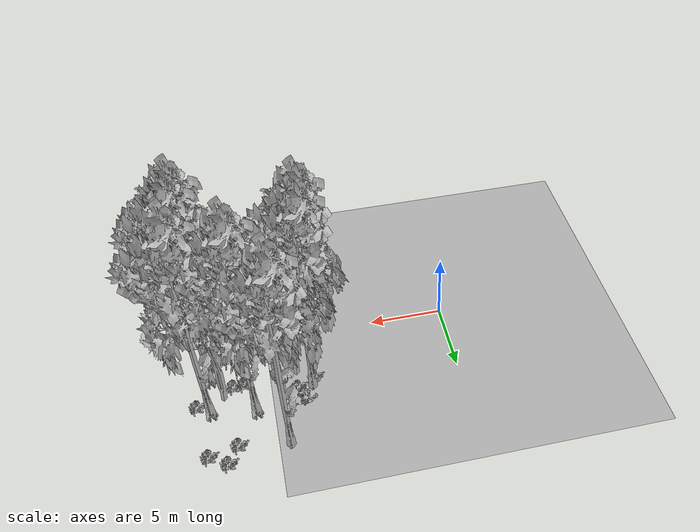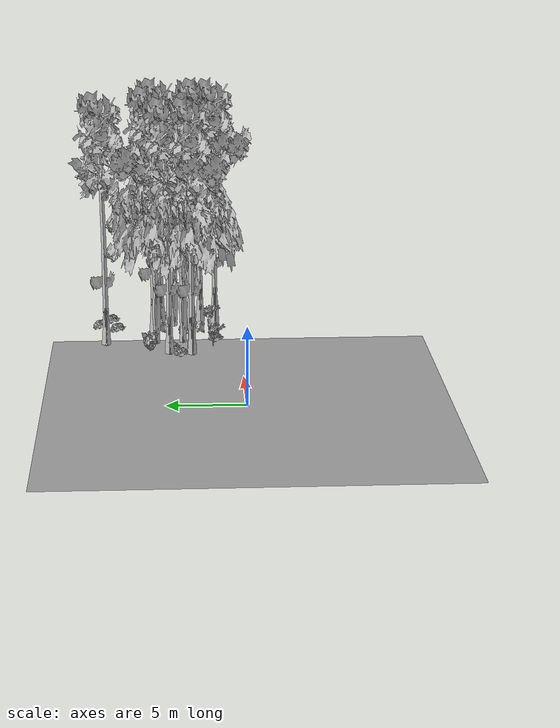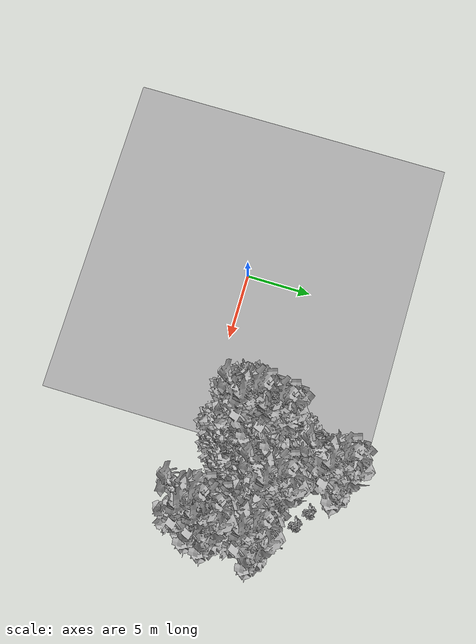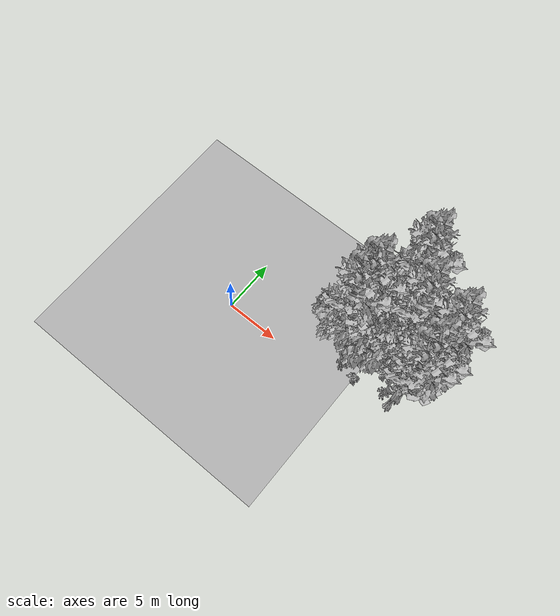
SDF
<sdf version="1.7">
 <world name="default">
  <model name="ground_plane">
   <static>1</static>
   <link name="link">
    <collision name="collision">
     <pose>-50 0 0 0 -0 0</pose>
     <geometry><plane><normal>0 0 1</normal><size>80 80</size></plane></geometry>
     <surface><contact><ode><min_depth>0.01</min_depth><max_vel>0</max_vel></ode></contact></surface>
    </collision>
    <visual name="grass">
     <cast_shadows>0</cast_shadows>
     <geometry>
      <mesh>
       <scale>0.46714285714285714 0.46714285714285714 0.1</scale>
       <uri>file://grass_plane/meshes/grass_plane.dae</uri>
      </mesh>
     </geometry>
    </visual>
   </link>
  </model>
  <model name="Tree 91">
   <static>1</static>
   <pose>12.064663300951928 3.7805747431312255 0 1.57079 -0 0</pose>
   <link name="link">
    <collision name="collision">
     <geometry><mesh><scale>3.5 5 3.5</scale><uri>model://tree_2/meshes/tree_2.obj</uri></mesh></geometry>
    </collision>
    <visual name="visual">
     <geometry><mesh><scale>3.5 5 3.5</scale><uri>model://tree_2/meshes/tree_2.obj</uri></mesh></geometry>
    </visual>
   </link>
  </model>
  <model name="Tree 132">
   <static>1</static>
   <pose>11.874653444772065 5.584630991488062 0 1.57079 -0 0</pose>
   <link name="link">
    <collision name="collision">
     <geometry><mesh><scale>3.5 5 3.5</scale><uri>model://tree_2/meshes/tree_2.obj</uri></mesh></geometry>
    </collision>
    <visual name="visual">
     <geometry><mesh><scale>3.5 5 3.5</scale><uri>model://tree_2/meshes/tree_2.obj</uri></mesh></geometry>
    </visual>
   </link>
  </model>
  <model name="Tree 231">
   <static>1</static>
   <pose>16.60564585829775 2.5523537922074127 0 1.57079 -0 0</pose>
   <link name="link">
    <collision name="collision">
     <geometry><mesh><scale>3.5 5 3.5</scale><uri>model://tree_9/meshes/tree_9.obj</uri></mesh></geometry>
    </collision>
    <visual name="visual">
     <geometry><mesh><scale>3.5 5 3.5</scale><uri>model://tree_9/meshes/tree_9.obj</uri></mesh></geometry>
    </visual>
   </link>
  </model>
  <model name="Tree 263">
   <static>1</static>
   <pose>11.871580399086753 8.98770747200166 0 1.57079 -0 0</pose>
   <link name="link">
    <collision name="collision">
     <geometry><mesh><scale>3.5 5 3.5</scale><uri>model://tree_9/meshes/tree_9.obj</uri></mesh></geometry>
    </collision>
    <visual name="visual">
     <geometry><mesh><scale>3.5 5 3.5</scale><uri>model://tree_9/meshes/tree_9.obj</uri></mesh></geometry>
    </visual>
   </link>
  </model>
  <model name="Tree 379">
   <static>1</static>
   <pose>13.764884821866012 5.786025377461641 0 1.57079 -0 0</pose>
   <link name="link">
    <collision name="collision">
     <geometry><mesh><scale>3.5 5 3.5</scale><uri>model://tree_9/meshes/tree_9.obj</uri></mesh></geometry>
    </collision>
    <visual name="visual">
     <geometry><mesh><scale>3.5 5 3.5</scale><uri>model://tree_9/meshes/tree_9.obj</uri></mesh></geometry>
    </visual>
   </link>
  </model>
  <model name="Tree 418">
   <static>1</static>
   <pose>9.676499616490993 3.226738908703588 0 1.57079 -0 0</pose>
   <link name="link">
    <collision name="collision">
     <geometry><mesh><scale>3.5 5 3.5</scale><uri>model://tree_9/meshes/tree_9.obj</uri></mesh></geometry>
    </collision>
    <visual name="visual">
     <geometry><mesh><scale>3.5 5 3.5</scale><uri>model://tree_9/meshes/tree_9.obj</uri></mesh></geometry>
    </visual>
   </link>
  </model>
  <model name="Tree 421">
   <static>1</static>
   <pose>10.70336770791122 3.2593174972877037 0 1.57079 -0 0</pose>
   <link name="link">
    <collision name="collision">
     <geometry><mesh><scale>3.5 5 3.5</scale><uri>model://tree_2/meshes/tree_2.obj</uri></mesh></geometry>
    </collision>
    <visual name="visual">
     <geometry><mesh><scale>3.5 5 3.5</scale><uri>model://tree_2/meshes/tree_2.obj</uri></mesh></geometry>
    </visual>
   </link>
  </model>
  <model name="Tree 502">
   <static>1</static>
   <pose>9.88123849106423 4.730255870656784 0 1.57079 -0 0</pose>
   <link name="link">
    <collision name="collision">
     <geometry><mesh><scale>3.5 5 3.5</scale><uri>model://tree_9/meshes/tree_9.obj</uri></mesh></geometry>
    </collision>
    <visual name="visual">
     <geometry><mesh><scale>3.5 5 3.5</scale><uri>model://tree_9/meshes/tree_9.obj</uri></mesh></geometry>
    </visual>
   </link>
  </model>
  <model name="Tree 563">
   <static>1</static>
   <pose>16.709412925833803 5.286813532931731 0 1.57079 -0 0</pose>
   <link name="link">
    <collision name="collision">
     <geometry><mesh><scale>3.5 5 3.5</scale><uri>model://tree_9/meshes/tree_9.obj</uri></mesh></geometry>
    </collision>
    <visual name="visual">
     <geometry><mesh><scale>3.5 5 3.5</scale><uri>model://tree_9/meshes/tree_9.obj</uri></mesh></geometry>
    </visual>
   </link>
  </model>
  <model name="Tree 578">
   <static>1</static>
   <pose>15.637889580924039 4.375193885898987 0 1.57079 -0 0</pose>
   <link name="link">
    <collision name="collision">
     <geometry><mesh><scale>3.5 5 3.5</scale><uri>model://tree_2/meshes/tree_2.obj</uri></mesh></geometry>
    </collision>
    <visual name="visual">
     <geometry><mesh><scale>3.5 5 3.5</scale><uri>model://tree_2/meshes/tree_2.obj</uri></mesh></geometry>
    </visual>
   </link>
  </model>
  <model name="Tree 590">
   <static>1</static>
   <pose>16.343800915599452 1.533910170308431 0 1.57079 -0 0</pose>
   <link name="link">
    <collision name="collision">
     <geometry><mesh><scale>3.5 5 3.5</scale><uri>model://tree_9/meshes/tree_9.obj</uri></mesh></geometry>
    </collision>
    <visual name="visual">
     <geometry><mesh><scale>3.5 5 3.5</scale><uri>model://tree_9/meshes/tree_9.obj</uri></mesh></geometry>
    </visual>
   </link>
  </model>
  <model name="Bush 2">
   <static>1</static>
   <pose>15.820617448443492 9.491435068682136 0 1.57079 -0 0</pose>
   <link name="link">
    <collision name="collision">
     <geometry><mesh><scale>2 2 2</scale><uri>model://bush_2/meshes/bush_2.obj</uri></mesh></geometry>
     <surface><contact><collide_without_contact>false</collide_without_contact></contact></surface>
    </collision>
    <visual name="visual">
     <geometry><mesh><scale>2 2 2</scale><uri>model://bush_2/meshes/bush_2.obj</uri></mesh></geometry>
    </visual>
   </link>
  </model>
  <model name="Bush 86">
   <static>1</static>
   <pose>9.621587669705825 3.9430175420689153 0 1.57079 -0 0</pose>
   <link name="link">
    <collision name="collision">
     <geometry><mesh><scale>2 2 2</scale><uri>model://bush_2/meshes/bush_2.obj</uri></mesh></geometry>
     <surface><contact><collide_without_contact>false</collide_without_contact></contact></surface>
    </collision>
    <visual name="visual">
     <geometry><mesh><scale>2 2 2</scale><uri>model://bush_2/meshes/bush_2.obj</uri></mesh></geometry>
    </visual>
   </link>
  </model>
  <model name="Bush 95">
   <static>1</static>
   <pose>12.58733510453623 1.5702544373413048 0 1.57079 -0 0</pose>
   <link name="link">
    <collision name="collision">
     <geometry><mesh><scale>2 2 2</scale><uri>model://bush_2/meshes/bush_2.obj</uri></mesh></geometry>
     <surface><contact><collide_without_contact>false</collide_without_contact></contact></surface>
    </collision>
    <visual name="visual">
     <geometry><mesh><scale>2 2 2</scale><uri>model://bush_2/meshes/bush_2.obj</uri></mesh></geometry>
    </visual>
   </link>
  </model>
  <model name="Bush 301">
   <static>1</static>
   <pose>15.04786120889247 3.548079128792587 0 1.57079 -0 0</pose>
   <link name="link">
    <collision name="collision">
     <geometry><mesh><scale>2 2 2</scale><uri>model://bush_2/meshes/bush_2.obj</uri></mesh></geometry>
     <surface><contact><collide_without_contact>false</collide_without_contact></contact></surface>
    </collision>
    <visual name="visual">
     <geometry><mesh><scale>2 2 2</scale><uri>model://bush_2/meshes/bush_2.obj</uri></mesh></geometry>
    </visual>
   </link>
  </model>
  <model name="Bush 334">
   <static>1</static>
   <pose>17.506849279547787 4.737163456026181 0 1.57079 -0 0</pose>
   <link name="link">
    <collision name="collision">
     <geometry><mesh><scale>2 2 2</scale><uri>model://bush_2/meshes/bush_2.obj</uri></mesh></geometry>
     <surface><contact><collide_without_contact>false</collide_without_contact></contact></surface>
    </collision>
    <visual name="visual">
     <geometry><mesh><scale>2 2 2</scale><uri>model://bush_2/meshes/bush_2.obj</uri></mesh></geometry>
    </visual>
   </link>
  </model>
  <model name="Bush 374">
   <static>1</static>
   <pose>11.22661441725738 1.7938571071786313 0 1.57079 -0 0</pose>
   <link name="link">
    <collision name="collision">
     <geometry><mesh><scale>2 2 2</scale><uri>model://bush_5/meshes/bush_5.obj</uri></mesh></geometry>
     <surface><contact><collide_without_contact>false</collide_without_contact></contact></surface>
    </collision>
    <visual name="visual">
     <geometry><mesh><scale>2 2 2</scale><uri>model://bush_5/meshes/bush_5.obj</uri></mesh></geometry>
    </visual>
   </link>
  </model>
  <model name="Bush 439">
   <static>1</static>
   <pose>16.998848208447328 8.733092097183842 0 1.57079 -0 0</pose>
   <link name="link">
    <collision name="collision">
     <geometry><mesh><scale>2 2 2</scale><uri>model://bush_2/meshes/bush_2.obj</uri></mesh></geometry>
     <surface><contact><collide_without_contact>false</collide_without_contact></contact></surface>
    </collision>
    <visual name="visual">
     <geometry><mesh><scale>2 2 2</scale><uri>model://bush_2/meshes/bush_2.obj</uri></mesh></geometry>
    </visual>
   </link>
  </model>
  <model name="Bush 453">
   <static>1</static>
   <pose>10.505297642230367 5.979965565145989 0 1.57079 -0 0</pose>
   <link name="link">
    <collision name="collision">
     <geometry><mesh><scale>2 2 2</scale><uri>model://bush_4/meshes/bush_4.obj</uri></mesh></geometry>
     <surface><contact><collide_without_contact>false</collide_without_contact></contact></surface>
    </collision>
    <visual name="visual">
     <geometry><mesh><scale>2 2 2</scale><uri>model://bush_4/meshes/bush_4.obj</uri></mesh></geometry>
    </visual>
   </link>
  </model>
  <model name="Bush 479">
   <static>1</static>
   <pose>15.101739108279908 8.2856145364495 0 1.57079 -0 0</pose>
   <link name="link">
    <collision name="collision">
     <geometry><mesh><scale>2 2 2</scale><uri>model://bush_2/meshes/bush_2.obj</uri></mesh></geometry>
     <surface><contact><collide_without_contact>false</collide_without_contact></contact></surface>
    </collision>
    <visual name="visual">
     <geometry><mesh><scale>2 2 2</scale><uri>model://bush_2/meshes/bush_2.obj</uri></mesh></geometry>
    </visual>
   </link>
  </model>
  <model name="Bush 578">
   <static>1</static>
   <pose>10.82338091326109 4.53255148711478 0 1.57079 -0 0</pose>
   <link name="link">
    <collision name="collision">
     <geometry><mesh><scale>2 2 2</scale><uri>model://bush_2/meshes/bush_2.obj</uri></mesh></geometry>
     <surface><contact><collide_without_contact>false</collide_without_contact></contact></surface>
    </collision>
    <visual name="visual">
     <geometry><mesh><scale>2 2 2</scale><uri>model://bush_2/meshes/bush_2.obj</uri></mesh></geometry>
    </visual>
   </link>
  </model>
  <model name="Bush 611">
   <static>1</static>
   <pose>15.452730185801002 2.0063011698531312 0 1.57079 -0 0</pose>
   <link name="link">
    <collision name="collision">
     <geometry><mesh><scale>2 2 2</scale><uri>model://bush_5/meshes/bush_5.obj</uri></mesh></geometry>
     <surface><contact><collide_without_contact>false</collide_without_contact></contact></surface>
    </collision>
    <visual name="visual">
     <geometry><mesh><scale>2 2 2</scale><uri>model://bush_5/meshes/bush_5.obj</uri></mesh></geometry>
    </visual>
   </link>
  </model>
  <model name="Bush 620">
   <static>1</static>
   <pose>14.348098338428336 3.509398074226759 0 1.57079 -0 0</pose>
   <link name="link">
    <collision name="collision">
     <geometry><mesh><scale>2 2 2</scale><uri>model://bush_2/meshes/bush_2.obj</uri></mesh></geometry>
     <surface><contact><collide_without_contact>false</collide_without_contact></contact></surface>
    </collision>
    <visual name="visual">
     <geometry><mesh><scale>2 2 2</scale><uri>model://bush_2/meshes/bush_2.obj</uri></mesh></geometry>
    </visual>
   </link>
  </model>
 </world>
</sdf>
